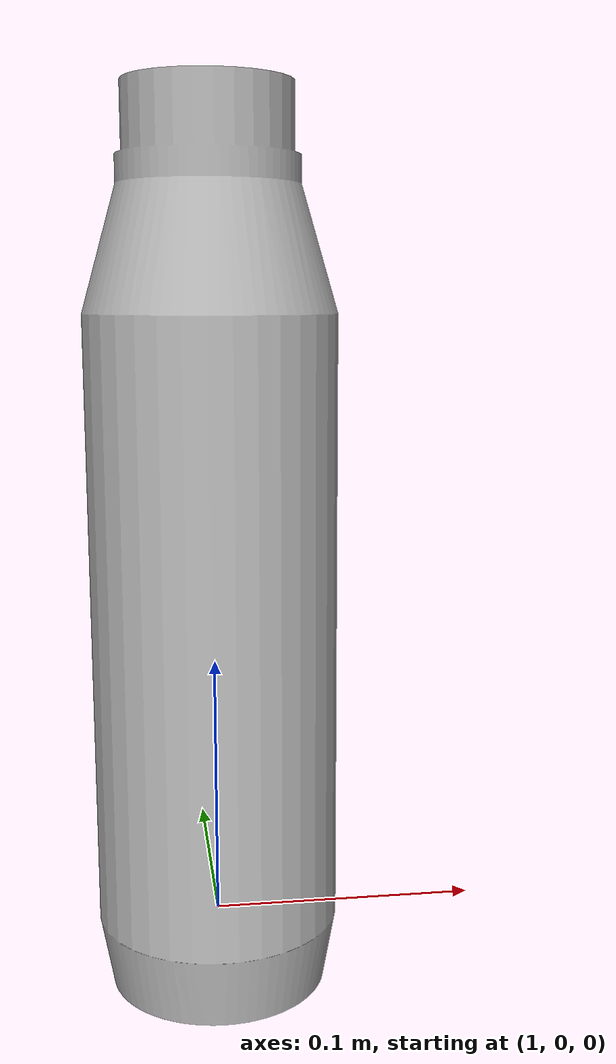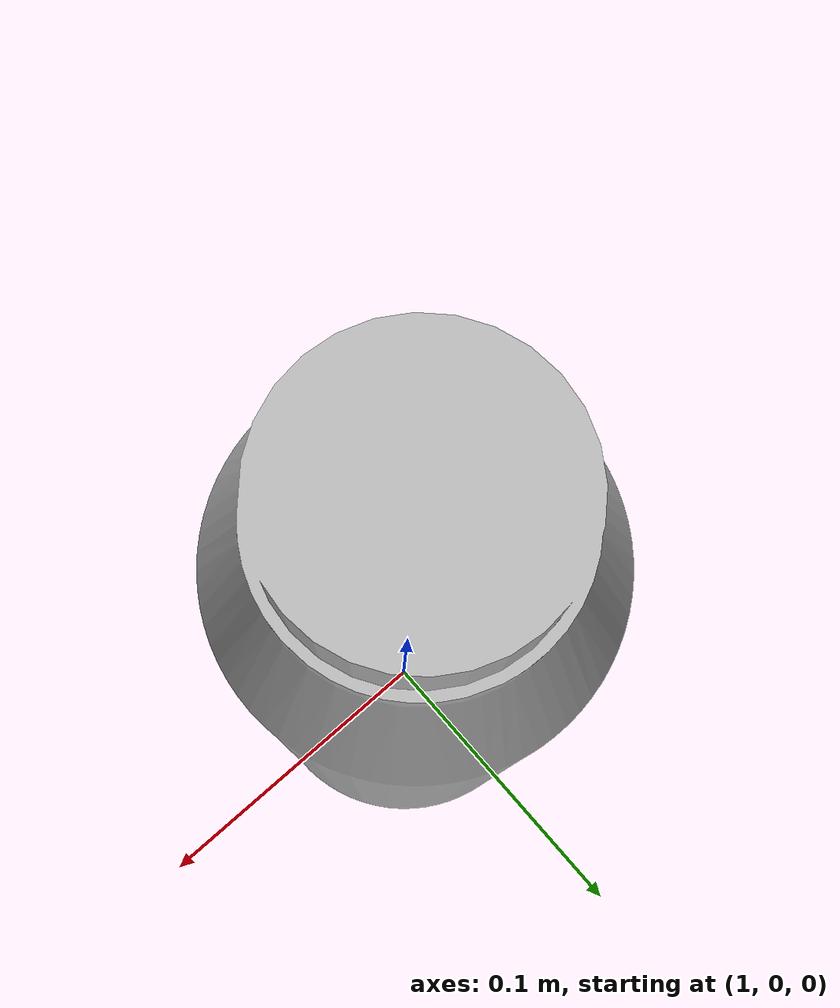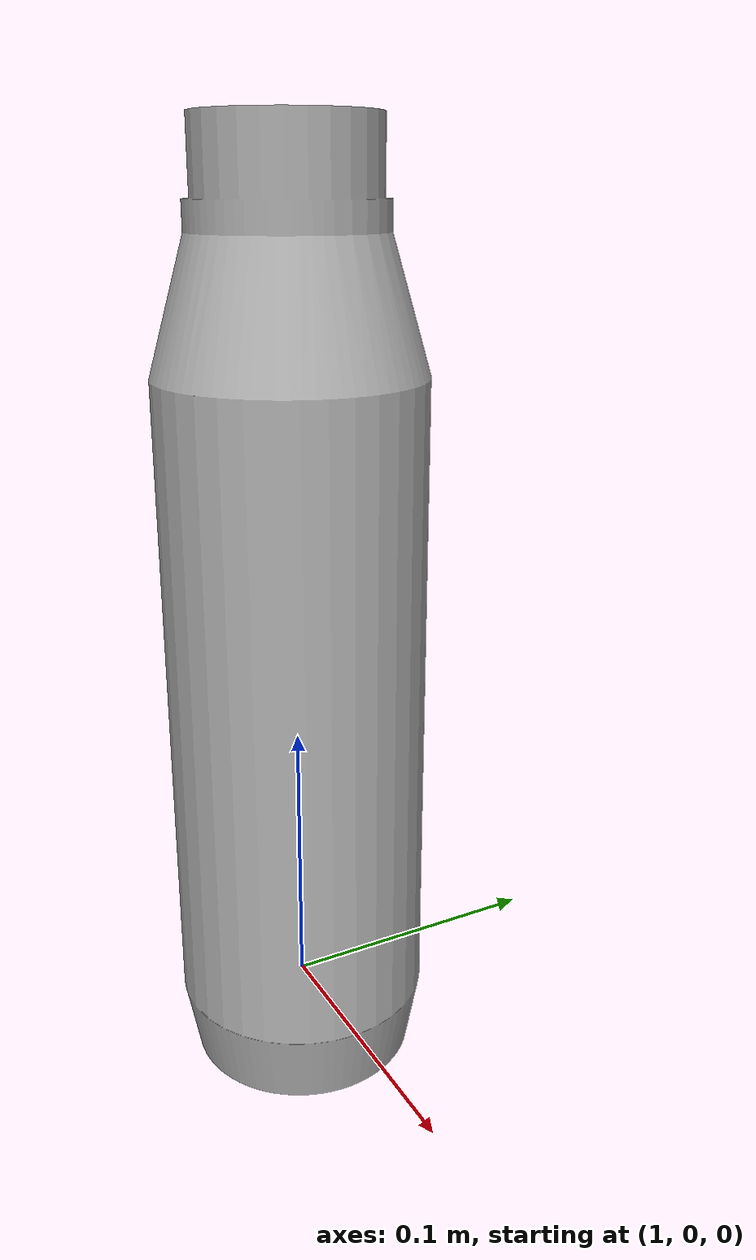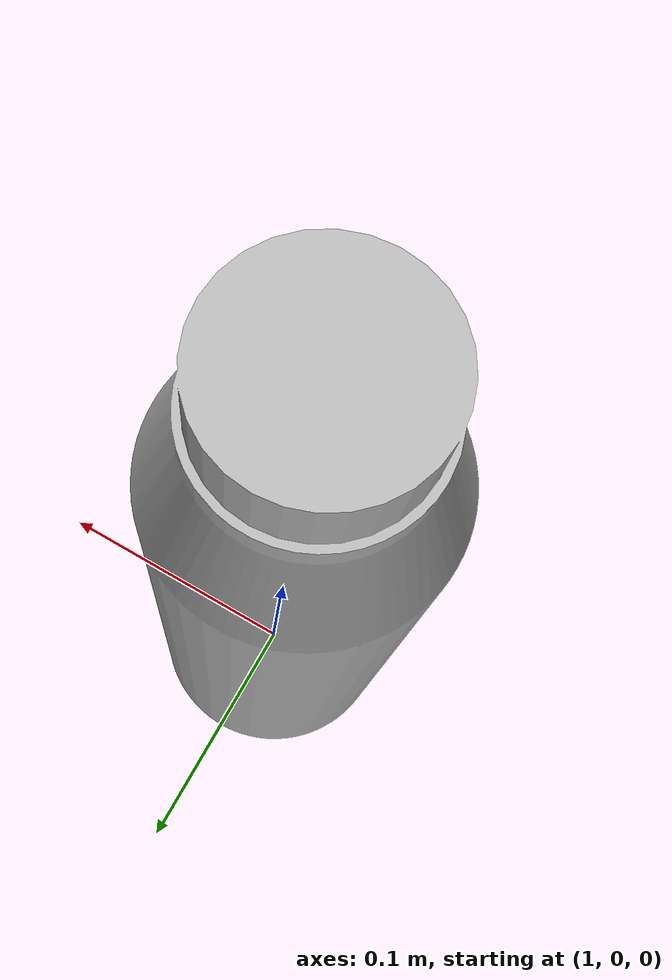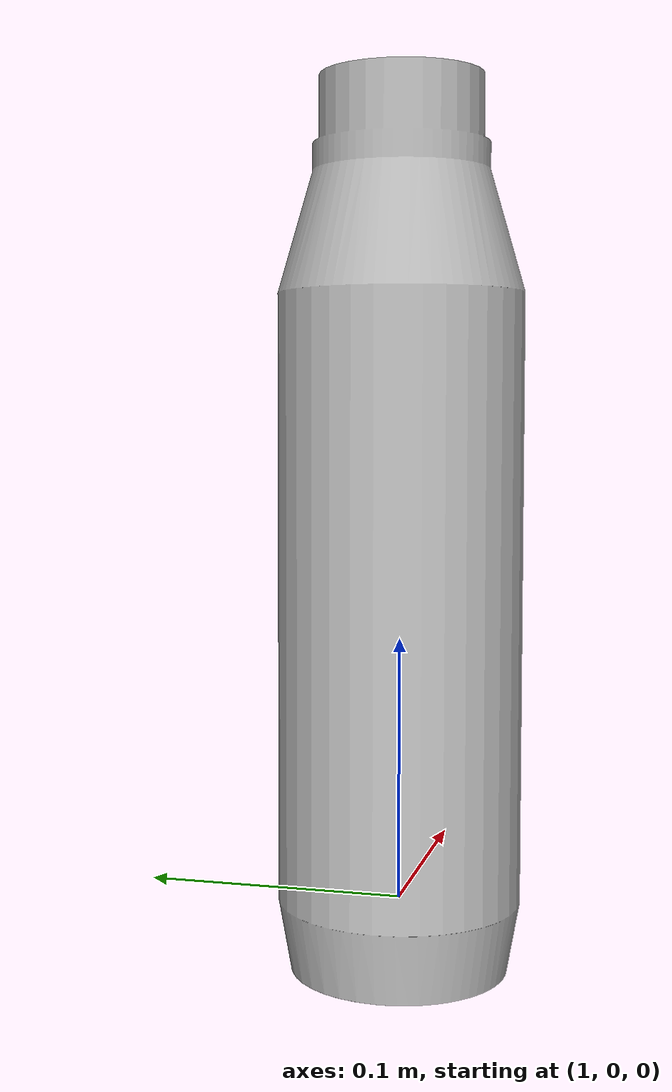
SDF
<?xml version="1.0" ?>
<sdf version="1.5">
  <model name="mpnet_bottle">
    <pose frame="world">1 0 0.0 0 0 0</pose>
    <static>true</static>
    <link name="link">
      <inertial>
        <mass>0.1</mass>
      </inertial>
      <visual name="visual">
        <geometry>
          <mesh>
            <uri>model://mpnet_bottle/meshes/bottle.stl</uri>
            <scale>0.001 0.001 0.001</scale>
          </mesh>
        </geometry>
      </visual>
    </link>
  </model>
</sdf>
